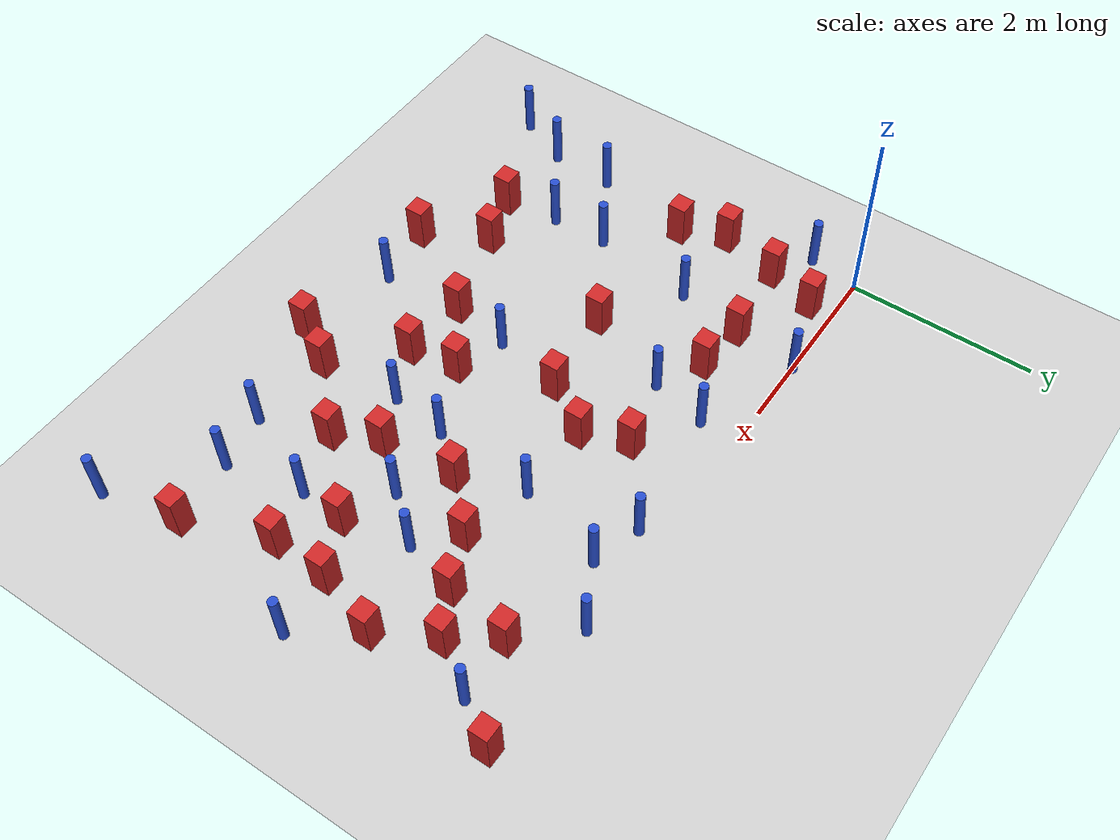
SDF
<sdf version="1.6">
 <world name="default">
  <model name="ground_plane">
   <static>1</static>
   <link name="link">
    <collision name="collision">
     <geometry><plane><normal>0 0 1</normal><size>100 100</size></plane></geometry>
     <surface><friction><ode><mu>100</mu><mu2>50</mu2></ode></friction></surface>
    </collision>
    <visual name="visual">
     <cast_shadows>0</cast_shadows>
     <geometry><plane><normal>0 0 1</normal><size>100 100</size></plane></geometry>
     <material>
      <ambient>1.0 1.0 1.0 1.0</ambient>
      <diffuse>0.8 0.8 0.8 1.0</diffuse>
      <specular>0.01 0.01 0.01 1.000000</specular>
     </material>
    </visual>
   </link>
  </model>
  <model name="NamedLocations">
   <static>true</static>
   <link name="DefaultStart"><pose>8.5 0 0 0 0 3.14</pose></link>
  </model>
  <model name="square_post_obstacle1">
   <static>true</static>
   <pose>3.32283525771 -3.27233390259 -4.36207812815e-07 3.75137919937e-06 9.77721102514e-07 2.47381364184e-05</pose>
   <link name="link">
    <pose>0 0 0.25 0 -0 0</pose>
    <inertial>
     <mass>100</mass>
     <inertia>
      <ixx>0.166667</ixx>
      <ixy>0</ixy>
      <ixz>0</ixz>
      <iyy>0.166667</iyy>
      <iyz>0</iyz>
      <izz>0.166667</izz>
     </inertia>
    </inertial>
    <collision name="collision"><geometry><box><size>.2 .2 .5</size></box></geometry></collision>
    <visual name="visual">
     <geometry><box><size>.2 .2 .5</size></box></geometry>
     <material>
      <script><name>Gazebo/Red</name><uri>file://media/materials/scripts/gazebo.material</uri></script>
     </material>
    </visual>
   </link>
  </model>
  <model name="pole_obstacle2">
   <static>true</static>
   <pose>-0.090030062196 -4.2540395773 -3.09024884793e-07 -7.19054271912e-07 -2.11315075133e-07 -1.93935509265e-07</pose>
   <link name="link">
    <pose>0 0 0.3 0 -0 0</pose>
    <inertial>
     <mass>1</mass>
     <inertia><ixx>0.145833</ixx><ixy>0</ixy><ixz>0</ixz><iyy>0.145833</iyy><iyz>0</iyz><izz>0.125</izz></inertia>
    </inertial>
    <collision name="collision">
     <geometry><cylinder><radius>0.05</radius><length>.6</length></cylinder></geometry>
    </collision>
    <visual name="visual">
     <geometry><cylinder><radius>0.05</radius><length>.6</length></cylinder></geometry>
     <material>
      <script><name>Gazebo/Blue</name><uri>file://media/materials/scripts/gazebo.material</uri></script>
     </material>
    </visual>
   </link>
  </model>
  <model name="pole_obstacle6">
   <static>true</static>
   <pose>4.31357146107 -0.379242574637 -3.09024884793e-07 -7.19054271912e-07 -2.11315075138e-07 -1.93935509266e-07</pose>
   <link name="link">
    <pose>0 0 0.3 0 -0 0</pose>
    <inertial>
     <mass>1</mass>
     <inertia><ixx>0.145833</ixx><ixy>0</ixy><ixz>0</ixz><iyy>0.145833</iyy><iyz>0</iyz><izz>0.125</izz></inertia>
    </inertial>
    <collision name="collision">
     <geometry><cylinder><radius>0.05</radius><length>.6</length></cylinder></geometry>
    </collision>
    <visual name="visual">
     <geometry><cylinder><radius>0.05</radius><length>.6</length></cylinder></geometry>
     <material>
      <script><name>Gazebo/Blue</name><uri>file://media/materials/scripts/gazebo.material</uri></script>
     </material>
    </visual>
   </link>
  </model>
  <model name="square_post_obstacle7">
   <static>true</static>
   <pose>3.95325379374 -3.89286199005 -4.36207812815e-07 3.75137919937e-06 9.77721102514e-07 2.47381364184e-05</pose>
   <link name="link">
    <pose>0 0 0.25 0 -0 0</pose>
    <inertial>
     <mass>100</mass>
     <inertia>
      <ixx>0.166667</ixx>
      <ixy>0</ixy>
      <ixz>0</ixz>
      <iyy>0.166667</iyy>
      <iyz>0</iyz>
      <izz>0.166667</izz>
     </inertia>
    </inertial>
    <collision name="collision"><geometry><box><size>.2 .2 .5</size></box></geometry></collision>
    <visual name="visual">
     <geometry><box><size>.2 .2 .5</size></box></geometry>
     <material>
      <script><name>Gazebo/Red</name><uri>file://media/materials/scripts/gazebo.material</uri></script>
     </material>
    </visual>
   </link>
  </model>
  <model name="pole_obstacle12">
   <static>true</static>
   <pose>3.95533532752 -2.41421232316 -3.09024884793e-07 -7.19054271912e-07 -2.11315075162e-07 -1.93935509281e-07</pose>
   <link name="link">
    <pose>0 0 0.3 0 -0 0</pose>
    <inertial>
     <mass>1</mass>
     <inertia><ixx>0.145833</ixx><ixy>0</ixy><ixz>0</ixz><iyy>0.145833</iyy><iyz>0</iyz><izz>0.125</izz></inertia>
    </inertial>
    <collision name="collision">
     <geometry><cylinder><radius>0.05</radius><length>.6</length></cylinder></geometry>
    </collision>
    <visual name="visual">
     <geometry><cylinder><radius>0.05</radius><length>.6</length></cylinder></geometry>
     <material>
      <script><name>Gazebo/Blue</name><uri>file://media/materials/scripts/gazebo.material</uri></script>
     </material>
    </visual>
   </link>
  </model>
  <model name="pole_obstacle15">
   <static>true</static>
   <pose>4.04022569842 -1.31853993154 -3.09024884848e-07 -7.19054271902e-07 -2.11315075195e-07 -1.93935509285e-07</pose>
   <link name="link">
    <pose>0 0 0.3 0 -0 0</pose>
    <inertial>
     <mass>1</mass>
     <inertia><ixx>0.145833</ixx><ixy>0</ixy><ixz>0</ixz><iyy>0.145833</iyy><iyz>0</iyz><izz>0.125</izz></inertia>
    </inertial>
    <collision name="collision">
     <geometry><cylinder><radius>0.05</radius><length>.6</length></cylinder></geometry>
    </collision>
    <visual name="visual">
     <geometry><cylinder><radius>0.05</radius><length>.6</length></cylinder></geometry>
     <material>
      <script><name>Gazebo/Blue</name><uri>file://media/materials/scripts/gazebo.material</uri></script>
     </material>
    </visual>
   </link>
  </model>
  <model name="square_post_obstacle15">
   <static>true</static>
   <pose>1.08311566166 -3.7098398395 -4.36207812815e-07 3.75137919937e-06 9.77721102514e-07 2.47381364184e-05</pose>
   <link name="link">
    <pose>0 0 0.25 0 -0 0</pose>
    <inertial>
     <mass>100</mass>
     <inertia>
      <ixx>0.166667</ixx>
      <ixy>0</ixy>
      <ixz>0</ixz>
      <iyy>0.166667</iyy>
      <iyz>0</iyz>
      <izz>0.166667</izz>
     </inertia>
    </inertial>
    <collision name="collision"><geometry><box><size>.2 .2 .5</size></box></geometry></collision>
    <visual name="visual">
     <geometry><box><size>.2 .2 .5</size></box></geometry>
     <material>
      <script><name>Gazebo/Red</name><uri>file://media/materials/scripts/gazebo.material</uri></script>
     </material>
    </visual>
   </link>
  </model>
  <model name="square_post_obstacle17">
   <static>true</static>
   <pose>4.58752522071 -3.25393874034 -4.36207812815e-07 3.75137919937e-06 9.77721102514e-07 2.47381364184e-05</pose>
   <link name="link">
    <pose>0 0 0.25 0 -0 0</pose>
    <inertial>
     <mass>100</mass>
     <inertia>
      <ixx>0.166667</ixx>
      <ixy>0</ixy>
      <ixz>0</ixz>
      <iyy>0.166667</iyy>
      <iyz>0</iyz>
      <izz>0.166667</izz>
     </inertia>
    </inertial>
    <collision name="collision"><geometry><box><size>.2 .2 .5</size></box></geometry></collision>
    <visual name="visual">
     <geometry><box><size>.2 .2 .5</size></box></geometry>
     <material>
      <script><name>Gazebo/Red</name><uri>file://media/materials/scripts/gazebo.material</uri></script>
     </material>
    </visual>
   </link>
  </model>
  <model name="pole_obstacle23">
   <static>true</static>
   <pose>2.4174713655 -0.40537235112 -3.09024884793e-07 -7.19054271912e-07 -2.1131507512e-07 -1.93935509259e-07</pose>
   <link name="link">
    <pose>0 0 0.3 0 -0 0</pose>
    <inertial>
     <mass>1</mass>
     <inertia><ixx>0.145833</ixx><ixy>0</ixy><ixz>0</ixz><iyy>0.145833</iyy><iyz>0</iyz><izz>0.125</izz></inertia>
    </inertial>
    <collision name="collision">
     <geometry><cylinder><radius>0.05</radius><length>.6</length></cylinder></geometry>
    </collision>
    <visual name="visual">
     <geometry><cylinder><radius>0.05</radius><length>.6</length></cylinder></geometry>
     <material>
      <script><name>Gazebo/Blue</name><uri>file://media/materials/scripts/gazebo.material</uri></script>
     </material>
    </visual>
   </link>
  </model>
  <model name="square_post_obstacle27">
   <static>true</static>
   <pose>5.29425867589 -1.25550853818 -4.36207812815e-07 3.75137919937e-06 9.77721102514e-07 2.47381364184e-05</pose>
   <link name="link">
    <pose>0 0 0.25 0 -0 0</pose>
    <inertial>
     <mass>100</mass>
     <inertia>
      <ixx>0.166667</ixx>
      <ixy>0</ixy>
      <ixz>0</ixz>
      <iyy>0.166667</iyy>
      <iyz>0</iyz>
      <izz>0.166667</izz>
     </inertia>
    </inertial>
    <collision name="collision"><geometry><box><size>.2 .2 .5</size></box></geometry></collision>
    <visual name="visual">
     <geometry><box><size>.2 .2 .5</size></box></geometry>
     <material>
      <script><name>Gazebo/Red</name><uri>file://media/materials/scripts/gazebo.material</uri></script>
     </material>
    </visual>
   </link>
  </model>
  <model name="square_post_obstacle28">
   <static>true</static>
   <pose>6.04809319809 -1.59033649194 -4.36207812815e-07 3.75137919937e-06 9.77721102514e-07 2.47381364184e-05</pose>
   <link name="link">
    <pose>0 0 0.25 0 -0 0</pose>
    <inertial>
     <mass>100</mass>
     <inertia>
      <ixx>0.166667</ixx>
      <ixy>0</ixy>
      <ixz>0</ixz>
      <iyy>0.166667</iyy>
      <iyz>0</iyz>
      <izz>0.166667</izz>
     </inertia>
    </inertial>
    <collision name="collision"><geometry><box><size>.2 .2 .5</size></box></geometry></collision>
    <visual name="visual">
     <geometry><box><size>.2 .2 .5</size></box></geometry>
     <material>
      <script><name>Gazebo/Red</name><uri>file://media/materials/scripts/gazebo.material</uri></script>
     </material>
    </visual>
   </link>
  </model>
  <model name="pole_obstacle33">
   <static>true</static>
   <pose>4.92546028938 -0.0373488993604 -3.09024884793e-07 -7.19054271912e-07 -2.11315075134e-07 -1.93935509267e-07</pose>
   <link name="link">
    <pose>0 0 0.3 0 -0 0</pose>
    <inertial>
     <mass>1</mass>
     <inertia><ixx>0.145833</ixx><ixy>0</ixy><ixz>0</ixz><iyy>0.145833</iyy><iyz>0</iyz><izz>0.125</izz></inertia>
    </inertial>
    <collision name="collision">
     <geometry><cylinder><radius>0.05</radius><length>.6</length></cylinder></geometry>
    </collision>
    <visual name="visual">
     <geometry><cylinder><radius>0.05</radius><length>.6</length></cylinder></geometry>
     <material>
      <script><name>Gazebo/Blue</name><uri>file://media/materials/scripts/gazebo.material</uri></script>
     </material>
    </visual>
   </link>
  </model>
  <model name="pole_obstacle41">
   <static>true</static>
   <pose>0.159189399075 -3.69354290294 -3.09024884848e-07 -7.19054271902e-07 -2.11315075201e-07 -1.93935509286e-07</pose>
   <link name="link">
    <pose>0 0 0.3 0 -0 0</pose>
    <inertial>
     <mass>1</mass>
     <inertia><ixx>0.145833</ixx><ixy>0</ixy><ixz>0</ixz><iyy>0.145833</iyy><iyz>0</iyz><izz>0.125</izz></inertia>
    </inertial>
    <collision name="collision">
     <geometry><cylinder><radius>0.05</radius><length>.6</length></cylinder></geometry>
    </collision>
    <visual name="visual">
     <geometry><cylinder><radius>0.05</radius><length>.6</length></cylinder></geometry>
     <material>
      <script><name>Gazebo/Blue</name><uri>file://media/materials/scripts/gazebo.material</uri></script>
     </material>
    </visual>
   </link>
  </model>
  <model name="square_post_obstacle36">
   <static>true</static>
   <pose>1.27302640206 -0.679181264691 -4.36207812815e-07 3.75137919937e-06 9.77721102514e-07 2.47381364184e-05</pose>
   <link name="link">
    <pose>0 0 0.25 0 -0 0</pose>
    <inertial>
     <mass>100</mass>
     <inertia>
      <ixx>0.166667</ixx>
      <ixy>0</ixy>
      <ixz>0</ixz>
      <iyy>0.166667</iyy>
      <iyz>0</iyz>
      <izz>0.166667</izz>
     </inertia>
    </inertial>
    <collision name="collision"><geometry><box><size>.2 .2 .5</size></box></geometry></collision>
    <visual name="visual">
     <geometry><box><size>.2 .2 .5</size></box></geometry>
     <material>
      <script><name>Gazebo/Red</name><uri>file://media/materials/scripts/gazebo.material</uri></script>
     </material>
    </visual>
   </link>
  </model>
  <model name="square_post_obstacle38">
   <static>true</static>
   <pose>0.394411259641 -1.92140299886 -4.36207812815e-07 3.75137919937e-06 9.77721102514e-07 2.47381364184e-05</pose>
   <link name="link">
    <pose>0 0 0.25 0 -0 0</pose>
    <inertial>
     <mass>100</mass>
     <inertia>
      <ixx>0.166667</ixx>
      <ixy>0</ixy>
      <ixz>0</ixz>
      <iyy>0.166667</iyy>
      <iyz>0</iyz>
      <izz>0.166667</izz>
     </inertia>
    </inertial>
    <collision name="collision"><geometry><box><size>.2 .2 .5</size></box></geometry></collision>
    <visual name="visual">
     <geometry><box><size>.2 .2 .5</size></box></geometry>
     <material>
      <script><name>Gazebo/Red</name><uri>file://media/materials/scripts/gazebo.material</uri></script>
     </material>
    </visual>
   </link>
  </model>
  <model name="pole_obstacle51">
   <static>true</static>
   <pose>3.86514839999 -3.03517323641 -3.09024884793e-07 -7.19054271912e-07 -2.11315075144e-07 -1.93935509271e-07</pose>
   <link name="link">
    <pose>0 0 0.3 0 -0 0</pose>
    <inertial>
     <mass>1</mass>
     <inertia><ixx>0.145833</ixx><ixy>0</ixy><ixz>0</ixz><iyy>0.145833</iyy><iyz>0</iyz><izz>0.125</izz></inertia>
    </inertial>
    <collision name="collision">
     <geometry><cylinder><radius>0.05</radius><length>.6</length></cylinder></geometry>
    </collision>
    <visual name="visual">
     <geometry><cylinder><radius>0.05</radius><length>.6</length></cylinder></geometry>
     <material>
      <script><name>Gazebo/Blue</name><uri>file://media/materials/scripts/gazebo.material</uri></script>
     </material>
    </visual>
   </link>
  </model>
  <model name="pole_obstacle53">
   <static>true</static>
   <pose>2.65571239554 -4.11644397076 -3.09024884793e-07 -7.19054271912e-07 -2.11315075134e-07 -1.93935509266e-07</pose>
   <link name="link">
    <pose>0 0 0.3 0 -0 0</pose>
    <inertial>
     <mass>1</mass>
     <inertia><ixx>0.145833</ixx><ixy>0</ixy><ixz>0</ixz><iyy>0.145833</iyy><iyz>0</iyz><izz>0.125</izz></inertia>
    </inertial>
    <collision name="collision">
     <geometry><cylinder><radius>0.05</radius><length>.6</length></cylinder></geometry>
    </collision>
    <visual name="visual">
     <geometry><cylinder><radius>0.05</radius><length>.6</length></cylinder></geometry>
     <material>
      <script><name>Gazebo/Blue</name><uri>file://media/materials/scripts/gazebo.material</uri></script>
     </material>
    </visual>
   </link>
  </model>
  <model name="square_post_obstacle40">
   <static>true</static>
   <pose>4.76847628048 -1.4942307079 -4.36207812815e-07 3.75137919937e-06 9.77721102514e-07 2.47381364184e-05</pose>
   <link name="link">
    <pose>0 0 0.25 0 -0 0</pose>
    <inertial>
     <mass>100</mass>
     <inertia>
      <ixx>0.166667</ixx>
      <ixy>0</ixy>
      <ixz>0</ixz>
      <iyy>0.166667</iyy>
      <iyz>0</iyz>
      <izz>0.166667</izz>
     </inertia>
    </inertial>
    <collision name="collision"><geometry><box><size>.2 .2 .5</size></box></geometry></collision>
    <visual name="visual">
     <geometry><box><size>.2 .2 .5</size></box></geometry>
     <material>
      <script><name>Gazebo/Red</name><uri>file://media/materials/scripts/gazebo.material</uri></script>
     </material>
    </visual>
   </link>
  </model>
  <model name="square_post_obstacle42">
   <static>true</static>
   <pose>1.64637830347 -3.52185712327 -4.36207812815e-07 3.75137919937e-06 9.77721102514e-07 2.47381364184e-05</pose>
   <link name="link">
    <pose>0 0 0.25 0 -0 0</pose>
    <inertial>
     <mass>100</mass>
     <inertia>
      <ixx>0.166667</ixx>
      <ixy>0</ixy>
      <ixz>0</ixz>
      <iyy>0.166667</iyy>
      <iyz>0</iyz>
      <izz>0.166667</izz>
     </inertia>
    </inertial>
    <collision name="collision"><geometry><box><size>.2 .2 .5</size></box></geometry></collision>
    <visual name="visual">
     <geometry><box><size>.2 .2 .5</size></box></geometry>
     <material>
      <script><name>Gazebo/Red</name><uri>file://media/materials/scripts/gazebo.material</uri></script>
     </material>
    </visual>
   </link>
  </model>
  <model name="pole_obstacle57">
   <static>true</static>
   <pose>0.958607570691 -2.53665374595 -3.09024884793e-07 -7.19054271912e-07 -2.11315075133e-07 -1.93935509265e-07</pose>
   <link name="link">
    <pose>0 0 0.3 0 -0 0</pose>
    <inertial>
     <mass>1</mass>
     <inertia><ixx>0.145833</ixx><ixy>0</ixy><ixz>0</ixz><iyy>0.145833</iyy><iyz>0</iyz><izz>0.125</izz></inertia>
    </inertial>
    <collision name="collision">
     <geometry><cylinder><radius>0.05</radius><length>.6</length></cylinder></geometry>
    </collision>
    <visual name="visual">
     <geometry><cylinder><radius>0.05</radius><length>.6</length></cylinder></geometry>
     <material>
      <script><name>Gazebo/Blue</name><uri>file://media/materials/scripts/gazebo.material</uri></script>
     </material>
    </visual>
   </link>
  </model>
  <model name="square_post_obstacle50">
   <static>true</static>
   <pose>1.82663103435 -0.73464391659 -4.36207812815e-07 3.75137919937e-06 9.77721102514e-07 2.47381364184e-05</pose>
   <link name="link">
    <pose>0 0 0.25 0 -0 0</pose>
    <inertial>
     <mass>100</mass>
     <inertia>
      <ixx>0.166667</ixx>
      <ixy>0</ixy>
      <ixz>0</ixz>
      <iyy>0.166667</iyy>
      <iyz>0</iyz>
      <izz>0.166667</izz>
     </inertia>
    </inertial>
    <collision name="collision"><geometry><box><size>.2 .2 .5</size></box></geometry></collision>
    <visual name="visual">
     <geometry><box><size>.2 .2 .5</size></box></geometry>
     <material>
      <script><name>Gazebo/Red</name><uri>file://media/materials/scripts/gazebo.material</uri></script>
     </material>
    </visual>
   </link>
  </model>
  <model name="square_post_obstacle61">
   <static>true</static>
   <pose>2.61724315105 -3.21177866637 -4.36207812815e-07 3.75137919937e-06 9.77721102514e-07 2.47381364184e-05</pose>
   <link name="link">
    <pose>0 0 0.25 0 -0 0</pose>
    <inertial>
     <mass>100</mass>
     <inertia>
      <ixx>0.166667</ixx>
      <ixy>0</ixy>
      <ixz>0</ixz>
      <iyy>0.166667</iyy>
      <iyz>0</iyz>
      <izz>0.166667</izz>
     </inertia>
    </inertial>
    <collision name="collision"><geometry><box><size>.2 .2 .5</size></box></geometry></collision>
    <visual name="visual">
     <geometry><box><size>.2 .2 .5</size></box></geometry>
     <material>
      <script><name>Gazebo/Red</name><uri>file://media/materials/scripts/gazebo.material</uri></script>
     </material>
    </visual>
   </link>
  </model>
  <model name="pole_obstacle76">
   <static>true</static>
   <pose>2.27553708797 -1.00912454596 -3.09024884793e-07 -7.19054271912e-07 -2.11315075125e-07 -1.93935509262e-07</pose>
   <link name="link">
    <pose>0 0 0.3 0 -0 0</pose>
    <inertial>
     <mass>1</mass>
     <inertia><ixx>0.145833</ixx><ixy>0</ixy><ixz>0</ixz><iyy>0.145833</iyy><iyz>0</iyz><izz>0.125</izz></inertia>
    </inertial>
    <collision name="collision">
     <geometry><cylinder><radius>0.05</radius><length>.6</length></cylinder></geometry>
    </collision>
    <visual name="visual">
     <geometry><cylinder><radius>0.05</radius><length>.6</length></cylinder></geometry>
     <material>
      <script><name>Gazebo/Blue</name><uri>file://media/materials/scripts/gazebo.material</uri></script>
     </material>
    </visual>
   </link>
  </model>
  <model name="square_post_obstacle65">
   <static>true</static>
   <pose>5.43057047458 -0.554225199465 -4.36207812815e-07 3.75137919937e-06 9.77721102514e-07 2.47381364184e-05</pose>
   <link name="link">
    <pose>0 0 0.25 0 -0 0</pose>
    <inertial>
     <mass>100</mass>
     <inertia>
      <ixx>0.166667</ixx>
      <ixy>0</ixy>
      <ixz>0</ixz>
      <iyy>0.166667</iyy>
      <iyz>0</iyz>
      <izz>0.166667</izz>
     </inertia>
    </inertial>
    <collision name="collision"><geometry><box><size>.2 .2 .5</size></box></geometry></collision>
    <visual name="visual">
     <geometry><box><size>.2 .2 .5</size></box></geometry>
     <material>
      <script><name>Gazebo/Red</name><uri>file://media/materials/scripts/gazebo.material</uri></script>
     </material>
    </visual>
   </link>
  </model>
  <model name="pole_obstacle78">
   <static>true</static>
   <pose>0.974490368155 -3.14868619021 -3.09024884793e-07 -7.19054271912e-07 -2.11315075133e-07 -1.93935509265e-07</pose>
   <link name="link">
    <pose>0 0 0.3 0 -0 0</pose>
    <inertial>
     <mass>1</mass>
     <inertia><ixx>0.145833</ixx><ixy>0</ixy><ixz>0</ixz><iyy>0.145833</iyy><iyz>0</iyz><izz>0.125</izz></inertia>
    </inertial>
    <collision name="collision">
     <geometry><cylinder><radius>0.05</radius><length>.6</length></cylinder></geometry>
    </collision>
    <visual name="visual">
     <geometry><cylinder><radius>0.05</radius><length>.6</length></cylinder></geometry>
     <material>
      <script><name>Gazebo/Blue</name><uri>file://media/materials/scripts/gazebo.material</uri></script>
     </material>
    </visual>
   </link>
  </model>
  <model name="square_post_obstacle76">
   <static>true</static>
   <pose>6.12492941724 -3.78424008547 -4.36207812815e-07 3.75137919937e-06 9.77721102514e-07 2.47381364184e-05</pose>
   <link name="link">
    <pose>0 0 0.25 0 -0 0</pose>
    <inertial>
     <mass>100</mass>
     <inertia>
      <ixx>0.166667</ixx>
      <ixy>0</ixy>
      <ixz>0</ixz>
      <iyy>0.166667</iyy>
      <iyz>0</iyz>
      <izz>0.166667</izz>
     </inertia>
    </inertial>
    <collision name="collision"><geometry><box><size>.2 .2 .5</size></box></geometry></collision>
    <visual name="visual">
     <geometry><box><size>.2 .2 .5</size></box></geometry>
     <material>
      <script><name>Gazebo/Red</name><uri>file://media/materials/scripts/gazebo.material</uri></script>
     </material>
    </visual>
   </link>
  </model>
  <model name="square_post_obstacle96">
   <static>true</static>
   <pose>3.23303195512 -1.29019972209 -4.36207812815e-07 3.75137919937e-06 9.77721102514e-07 2.47381364184e-05</pose>
   <link name="link">
    <pose>0 0 0.25 0 -0 0</pose>
    <inertial>
     <mass>100</mass>
     <inertia>
      <ixx>0.166667</ixx>
      <ixy>0</ixy>
      <ixz>0</ixz>
      <iyy>0.166667</iyy>
      <iyz>0</iyz>
      <izz>0.166667</izz>
     </inertia>
    </inertial>
    <collision name="collision"><geometry><box><size>.2 .2 .5</size></box></geometry></collision>
    <visual name="visual">
     <geometry><box><size>.2 .2 .5</size></box></geometry>
     <material>
      <script><name>Gazebo/Red</name><uri>file://media/materials/scripts/gazebo.material</uri></script>
     </material>
    </visual>
   </link>
  </model>
  <model name="square_post_obstacle111">
   <static>true</static>
   <pose>5.83171530563 -2.25911229447 -4.36207812815e-07 3.75137919937e-06 9.77721102514e-07 2.47381364184e-05</pose>
   <link name="link">
    <pose>0 0 0.25 0 -0 0</pose>
    <inertial>
     <mass>100</mass>
     <inertia>
      <ixx>0.166667</ixx>
      <ixy>0</ixy>
      <ixz>0</ixz>
      <iyy>0.166667</iyy>
      <iyz>0</iyz>
      <izz>0.166667</izz>
     </inertia>
    </inertial>
    <collision name="collision"><geometry><box><size>.2 .2 .5</size></box></geometry></collision>
    <visual name="visual">
     <geometry><box><size>.2 .2 .5</size></box></geometry>
     <material>
      <script><name>Gazebo/Red</name><uri>file://media/materials/scripts/gazebo.material</uri></script>
     </material>
    </visual>
   </link>
  </model>
  <model name="square_post_obstacle121">
   <static>true</static>
   <pose>3.67664521151 -4.34194914626 -4.36207812815e-07 3.75137919937e-06 9.77721102514e-07 2.47381364184e-05</pose>
   <link name="link">
    <pose>0 0 0.25 0 -0 0</pose>
    <inertial>
     <mass>100</mass>
     <inertia>
      <ixx>0.166667</ixx>
      <ixy>0</ixy>
      <ixz>0</ixz>
      <iyy>0.166667</iyy>
      <iyz>0</iyz>
      <izz>0.166667</izz>
     </inertia>
    </inertial>
    <collision name="collision"><geometry><box><size>.2 .2 .5</size></box></geometry></collision>
    <visual name="visual">
     <geometry><box><size>.2 .2 .5</size></box></geometry>
     <material>
      <script><name>Gazebo/Red</name><uri>file://media/materials/scripts/gazebo.material</uri></script>
     </material>
    </visual>
   </link>
  </model>
  <model name="square_post_obstacle123">
   <static>true</static>
   <pose>1.93709421673 -1.92891895501 -4.36207812815e-07 3.75137919937e-06 9.77721102514e-07 2.47381364184e-05</pose>
   <link name="link">
    <pose>0 0 0.25 0 -0 0</pose>
    <inertial>
     <mass>100</mass>
     <inertia>
      <ixx>0.166667</ixx>
      <ixy>0</ixy>
      <ixz>0</ixz>
      <iyy>0.166667</iyy>
      <iyz>0</iyz>
      <izz>0.166667</izz>
     </inertia>
    </inertial>
    <collision name="collision"><geometry><box><size>.2 .2 .5</size></box></geometry></collision>
    <visual name="visual">
     <geometry><box><size>.2 .2 .5</size></box></geometry>
     <material>
      <script><name>Gazebo/Red</name><uri>file://media/materials/scripts/gazebo.material</uri></script>
     </material>
    </visual>
   </link>
  </model>
  <model name="square_post_obstacle125">
   <static>true</static>
   <pose>3.05250829288 -0.802960864748 -4.36207812815e-07 3.75137919937e-06 9.77721102514e-07 2.47381364184e-05</pose>
   <link name="link">
    <pose>0 0 0.25 0 -0 0</pose>
    <inertial>
     <mass>100</mass>
     <inertia>
      <ixx>0.166667</ixx>
      <ixy>0</ixy>
      <ixz>0</ixz>
      <iyy>0.166667</iyy>
      <iyz>0</iyz>
      <izz>0.166667</izz>
     </inertia>
    </inertial>
    <collision name="collision"><geometry><box><size>.2 .2 .5</size></box></geometry></collision>
    <visual name="visual">
     <geometry><box><size>.2 .2 .5</size></box></geometry>
     <material>
      <script><name>Gazebo/Red</name><uri>file://media/materials/scripts/gazebo.material</uri></script>
     </material>
    </visual>
   </link>
  </model>
  <model name="square_post_obstacle132">
   <static>true</static>
   <pose>4.30776705622 -1.97303838122 -4.36207812815e-07 3.75137919937e-06 9.77721102514e-07 2.47381364184e-05</pose>
   <link name="link">
    <pose>0 0 0.25 0 -0 0</pose>
    <inertial>
     <mass>100</mass>
     <inertia>
      <ixx>0.166667</ixx>
      <ixy>0</ixy>
      <ixz>0</ixz>
      <iyy>0.166667</iyy>
      <iyz>0</iyz>
      <izz>0.166667</izz>
     </inertia>
    </inertial>
    <collision name="collision"><geometry><box><size>.2 .2 .5</size></box></geometry></collision>
    <visual name="visual">
     <geometry><box><size>.2 .2 .5</size></box></geometry>
     <material>
      <script><name>Gazebo/Red</name><uri>file://media/materials/scripts/gazebo.material</uri></script>
     </material>
    </visual>
   </link>
  </model>
  <model name="pole_obstacle133">
   <static>true</static>
   <pose>5.22800465277 -3.06257531897 -3.09024884793e-07 -7.19054271912e-07 -2.11315075144e-07 -1.93935509269e-07</pose>
   <link name="link">
    <pose>0 0 0.3 0 -0 0</pose>
    <inertial>
     <mass>1</mass>
     <inertia><ixx>0.145833</ixx><ixy>0</ixy><ixz>0</ixz><iyy>0.145833</iyy><iyz>0</iyz><izz>0.125</izz></inertia>
    </inertial>
    <collision name="collision">
     <geometry><cylinder><radius>0.05</radius><length>.6</length></cylinder></geometry>
    </collision>
    <visual name="visual">
     <geometry><cylinder><radius>0.05</radius><length>.6</length></cylinder></geometry>
     <material>
      <script><name>Gazebo/Blue</name><uri>file://media/materials/scripts/gazebo.material</uri></script>
     </material>
    </visual>
   </link>
  </model>
  <model name="pole_obstacle140">
   <static>true</static>
   <pose>4.81476506909 -3.9972521133 -3.09024884793e-07 -7.19054271912e-07 -2.11315075139e-07 -1.93935509266e-07</pose>
   <link name="link">
    <pose>0 0 0.3 0 -0 0</pose>
    <inertial>
     <mass>1</mass>
     <inertia><ixx>0.145833</ixx><ixy>0</ixy><ixz>0</ixz><iyy>0.145833</iyy><iyz>0</iyz><izz>0.125</izz></inertia>
    </inertial>
    <collision name="collision">
     <geometry><cylinder><radius>0.05</radius><length>.6</length></cylinder></geometry>
    </collision>
    <visual name="visual">
     <geometry><cylinder><radius>0.05</radius><length>.6</length></cylinder></geometry>
     <material>
      <script><name>Gazebo/Blue</name><uri>file://media/materials/scripts/gazebo.material</uri></script>
     </material>
    </visual>
   </link>
  </model>
  <model name="square_post_obstacle136">
   <static>true</static>
   <pose>0.539886403425 -0.250506031495 -4.36207812815e-07 3.75137919937e-06 9.77721102514e-07 2.47381364184e-05</pose>
   <link name="link">
    <pose>0 0 0.25 0 -0 0</pose>
    <inertial>
     <mass>100</mass>
     <inertia>
      <ixx>0.166667</ixx>
      <ixy>0</ixy>
      <ixz>0</ixz>
      <iyy>0.166667</iyy>
      <iyz>0</iyz>
      <izz>0.166667</izz>
     </inertia>
    </inertial>
    <collision name="collision"><geometry><box><size>.2 .2 .5</size></box></geometry></collision>
    <visual name="visual">
     <geometry><box><size>.2 .2 .5</size></box></geometry>
     <material>
      <script><name>Gazebo/Red</name><uri>file://media/materials/scripts/gazebo.material</uri></script>
     </material>
    </visual>
   </link>
  </model>
  <model name="pole_obstacle143">
   <static>true</static>
   <pose>1.12282845016 -1.41616495041 -3.09024884793e-07 -7.19054271912e-07 -2.1131507513e-07 -1.93935509263e-07</pose>
   <link name="link">
    <pose>0 0 0.3 0 -0 0</pose>
    <inertial>
     <mass>1</mass>
     <inertia><ixx>0.145833</ixx><ixy>0</ixy><ixz>0</ixz><iyy>0.145833</iyy><iyz>0</iyz><izz>0.125</izz></inertia>
    </inertial>
    <collision name="collision">
     <geometry><cylinder><radius>0.05</radius><length>.6</length></cylinder></geometry>
    </collision>
    <visual name="visual">
     <geometry><cylinder><radius>0.05</radius><length>.6</length></cylinder></geometry>
     <material>
      <script><name>Gazebo/Blue</name><uri>file://media/materials/scripts/gazebo.material</uri></script>
     </material>
    </visual>
   </link>
  </model>
  <model name="pole_obstacle150">
   <static>true</static>
   <pose>5.12417014059 -1.86456668137 -3.09024884793e-07 -7.19054271912e-07 -2.11315075124e-07 -1.93935509261e-07</pose>
   <link name="link">
    <pose>0 0 0.3 0 -0 0</pose>
    <inertial>
     <mass>1</mass>
     <inertia><ixx>0.145833</ixx><ixy>0</ixy><ixz>0</ixz><iyy>0.145833</iyy><iyz>0</iyz><izz>0.125</izz></inertia>
    </inertial>
    <collision name="collision">
     <geometry><cylinder><radius>0.05</radius><length>.6</length></cylinder></geometry>
    </collision>
    <visual name="visual">
     <geometry><cylinder><radius>0.05</radius><length>.6</length></cylinder></geometry>
     <material>
      <script><name>Gazebo/Blue</name><uri>file://media/materials/scripts/gazebo.material</uri></script>
     </material>
    </visual>
   </link>
  </model>
  <model name="square_post_obstacle146">
   <static>true</static>
   <pose>4.37323387232 -2.78024457127 -4.36207812815e-07 3.75137919937e-06 9.77721102514e-07 2.47381364184e-05</pose>
   <link name="link">
    <pose>0 0 0.25 0 -0 0</pose>
    <inertial>
     <mass>100</mass>
     <inertia>
      <ixx>0.166667</ixx>
      <ixy>0</ixy>
      <ixz>0</ixz>
      <iyy>0.166667</iyy>
      <iyz>0</iyz>
      <izz>0.166667</izz>
     </inertia>
    </inertial>
    <collision name="collision"><geometry><box><size>.2 .2 .5</size></box></geometry></collision>
    <visual name="visual">
     <geometry><box><size>.2 .2 .5</size></box></geometry>
     <material>
      <script><name>Gazebo/Red</name><uri>file://media/materials/scripts/gazebo.material</uri></script>
     </material>
    </visual>
   </link>
  </model>
  <model name="square_post_obstacle150">
   <static>true</static>
   <pose>5.79893883262 -2.88080021218 -4.36207812815e-07 3.75137919937e-06 9.77721102514e-07 2.47381364184e-05</pose>
   <link name="link">
    <pose>0 0 0.25 0 -0 0</pose>
    <inertial>
     <mass>100</mass>
     <inertia>
      <ixx>0.166667</ixx>
      <ixy>0</ixy>
      <ixz>0</ixz>
      <iyy>0.166667</iyy>
      <iyz>0</iyz>
      <izz>0.166667</izz>
     </inertia>
    </inertial>
    <collision name="collision"><geometry><box><size>.2 .2 .5</size></box></geometry></collision>
    <visual name="visual">
     <geometry><box><size>.2 .2 .5</size></box></geometry>
     <material>
      <script><name>Gazebo/Red</name><uri>file://media/materials/scripts/gazebo.material</uri></script>
     </material>
    </visual>
   </link>
  </model>
  <model name="square_post_obstacle152">
   <static>true</static>
   <pose>5.73869508783 -0.996038556362 -4.36207812815e-07 3.75137919937e-06 9.77721102514e-07 2.47381364184e-05</pose>
   <link name="link">
    <pose>0 0 0.25 0 -0 0</pose>
    <inertial>
     <mass>100</mass>
     <inertia>
      <ixx>0.166667</ixx>
      <ixy>0</ixy>
      <ixz>0</ixz>
      <iyy>0.166667</iyy>
      <iyz>0</iyz>
      <izz>0.166667</izz>
     </inertia>
    </inertial>
    <collision name="collision"><geometry><box><size>.2 .2 .5</size></box></geometry></collision>
    <visual name="visual">
     <geometry><box><size>.2 .2 .5</size></box></geometry>
     <material>
      <script><name>Gazebo/Red</name><uri>file://media/materials/scripts/gazebo.material</uri></script>
     </material>
    </visual>
   </link>
  </model>
  <model name="pole_obstacle165">
   <static>true</static>
   <pose>6.0582620305 -0.527635824463 -3.09024884793e-07 -7.19054271912e-07 -2.11315075137e-07 -1.93935509267e-07</pose>
   <link name="link">
    <pose>0 0 0.3 0 -0 0</pose>
    <inertial>
     <mass>1</mass>
     <inertia><ixx>0.145833</ixx><ixy>0</ixy><ixz>0</ixz><iyy>0.145833</iyy><iyz>0</iyz><izz>0.125</izz></inertia>
    </inertial>
    <collision name="collision">
     <geometry><cylinder><radius>0.05</radius><length>.6</length></cylinder></geometry>
    </collision>
    <visual name="visual">
     <geometry><cylinder><radius>0.05</radius><length>.6</length></cylinder></geometry>
     <material>
      <script><name>Gazebo/Blue</name><uri>file://media/materials/scripts/gazebo.material</uri></script>
     </material>
    </visual>
   </link>
  </model>
  <model name="square_post_obstacle163">
   <static>true</static>
   <pose>0.211110752942 -1.43130818301 -4.36207812815e-07 3.75137919937e-06 9.77721102514e-07 2.47381364184e-05</pose>
   <link name="link">
    <pose>0 0 0.25 0 -0 0</pose>
    <inertial>
     <mass>100</mass>
     <inertia>
      <ixx>0.166667</ixx>
      <ixy>0</ixy>
      <ixz>0</ixz>
      <iyy>0.166667</iyy>
      <iyz>0</iyz>
      <izz>0.166667</izz>
     </inertia>
    </inertial>
    <collision name="collision"><geometry><box><size>.2 .2 .5</size></box></geometry></collision>
    <visual name="visual">
     <geometry><box><size>.2 .2 .5</size></box></geometry>
     <material>
      <script><name>Gazebo/Red</name><uri>file://media/materials/scripts/gazebo.material</uri></script>
     </material>
    </visual>
   </link>
  </model>
  <model name="square_post_obstacle165">
   <static>true</static>
   <pose>1.99328530968 -4.19007012378 -4.36207812815e-07 3.75137919937e-06 9.77721102514e-07 2.47381364184e-05</pose>
   <link name="link">
    <pose>0 0 0.25 0 -0 0</pose>
    <inertial>
     <mass>100</mass>
     <inertia>
      <ixx>0.166667</ixx>
      <ixy>0</ixy>
      <ixz>0</ixz>
      <iyy>0.166667</iyy>
      <iyz>0</iyz>
      <izz>0.166667</izz>
     </inertia>
    </inertial>
    <collision name="collision"><geometry><box><size>.2 .2 .5</size></box></geometry></collision>
    <visual name="visual">
     <geometry><box><size>.2 .2 .5</size></box></geometry>
     <material>
      <script><name>Gazebo/Red</name><uri>file://media/materials/scripts/gazebo.material</uri></script>
     </material>
    </visual>
   </link>
  </model>
  <model name="square_post_obstacle166">
   <static>true</static>
   <pose>2.88526427425 -1.81429474862 -4.36207812815e-07 3.75137919937e-06 9.77721102514e-07 2.47381364184e-05</pose>
   <link name="link">
    <pose>0 0 0.25 0 -0 0</pose>
    <inertial>
     <mass>100</mass>
     <inertia>
      <ixx>0.166667</ixx>
      <ixy>0</ixy>
      <ixz>0</ixz>
      <iyy>0.166667</iyy>
      <iyz>0</iyz>
      <izz>0.166667</izz>
     </inertia>
    </inertial>
    <collision name="collision"><geometry><box><size>.2 .2 .5</size></box></geometry></collision>
    <visual name="visual">
     <geometry><box><size>.2 .2 .5</size></box></geometry>
     <material>
      <script><name>Gazebo/Red</name><uri>file://media/materials/scripts/gazebo.material</uri></script>
     </material>
    </visual>
   </link>
  </model>
  <model name="pole_obstacle169">
   <static>true</static>
   <pose>4.74107883556 -2.3349607389 -3.09024884793e-07 -7.19054271912e-07 -2.11315075144e-07 -1.93935509269e-07</pose>
   <link name="link">
    <pose>0 0 0.3 0 -0 0</pose>
    <inertial>
     <mass>1</mass>
     <inertia><ixx>0.145833</ixx><ixy>0</ixy><ixz>0</ixz><iyy>0.145833</iyy><iyz>0</iyz><izz>0.125</izz></inertia>
    </inertial>
    <collision name="collision">
     <geometry><cylinder><radius>0.05</radius><length>.6</length></cylinder></geometry>
    </collision>
    <visual name="visual">
     <geometry><cylinder><radius>0.05</radius><length>.6</length></cylinder></geometry>
     <material>
      <script><name>Gazebo/Blue</name><uri>file://media/materials/scripts/gazebo.material</uri></script>
     </material>
    </visual>
   </link>
  </model>
  <model name="square_post_obstacle178">
   <static>true</static>
   <pose>6.32492019444 -0.0845939479066 -4.36207812815e-07 3.75137919937e-06 9.77721102514e-07 2.47381364184e-05</pose>
   <link name="link">
    <pose>0 0 0.25 0 -0 0</pose>
    <inertial>
     <mass>100</mass>
     <inertia>
      <ixx>0.166667</ixx>
      <ixy>0</ixy>
      <ixz>0</ixz>
      <iyy>0.166667</iyy>
      <iyz>0</iyz>
      <izz>0.166667</izz>
     </inertia>
    </inertial>
    <collision name="collision"><geometry><box><size>.2 .2 .5</size></box></geometry></collision>
    <visual name="visual">
     <geometry><box><size>.2 .2 .5</size></box></geometry>
     <material>
      <script><name>Gazebo/Red</name><uri>file://media/materials/scripts/gazebo.material</uri></script>
     </material>
    </visual>
   </link>
  </model>
  <model name="pole_obstacle182">
   <static>true</static>
   <pose>-0.070607465535 -0.539835881829 -3.09024884793e-07 -7.19054271912e-07 -2.11315075131e-07 -1.93935509264e-07</pose>
   <link name="link">
    <pose>0 0 0.3 0 -0 0</pose>
    <inertial>
     <mass>1</mass>
     <inertia><ixx>0.145833</ixx><ixy>0</ixy><ixz>0</ixz><iyy>0.145833</iyy><iyz>0</iyz><izz>0.125</izz></inertia>
    </inertial>
    <collision name="collision">
     <geometry><cylinder><radius>0.05</radius><length>.6</length></cylinder></geometry>
    </collision>
    <visual name="visual">
     <geometry><cylinder><radius>0.05</radius><length>.6</length></cylinder></geometry>
     <material>
      <script><name>Gazebo/Blue</name><uri>file://media/materials/scripts/gazebo.material</uri></script>
     </material>
    </visual>
   </link>
  </model>
  <model name="square_post_obstacle183">
   <static>true</static>
   <pose>5.27632265578 -2.54101221713 -4.36207812815e-07 3.75137919937e-06 9.77721102514e-07 2.47381364184e-05</pose>
   <link name="link">
    <pose>0 0 0.25 0 -0 0</pose>
    <inertial>
     <mass>100</mass>
     <inertia>
      <ixx>0.166667</ixx>
      <ixy>0</ixy>
      <ixz>0</ixz>
      <iyy>0.166667</iyy>
      <iyz>0</iyz>
      <izz>0.166667</izz>
     </inertia>
    </inertial>
    <collision name="collision"><geometry><box><size>.2 .2 .5</size></box></geometry></collision>
    <visual name="visual">
     <geometry><box><size>.2 .2 .5</size></box></geometry>
     <material>
      <script><name>Gazebo/Red</name><uri>file://media/materials/scripts/gazebo.material</uri></script>
     </material>
    </visual>
   </link>
  </model>
  <model name="pole_obstacle185">
   <static>true</static>
   <pose>3.79849189872 -0.223082089836 -3.09024884848e-07 -7.19054271902e-07 -2.11315075197e-07 -1.93935509286e-07</pose>
   <link name="link">
    <pose>0 0 0.3 0 -0 0</pose>
    <inertial>
     <mass>1</mass>
     <inertia><ixx>0.145833</ixx><ixy>0</ixy><ixz>0</ixz><iyy>0.145833</iyy><iyz>0</iyz><izz>0.125</izz></inertia>
    </inertial>
    <collision name="collision">
     <geometry><cylinder><radius>0.05</radius><length>.6</length></cylinder></geometry>
    </collision>
    <visual name="visual">
     <geometry><cylinder><radius>0.05</radius><length>.6</length></cylinder></geometry>
     <material>
      <script><name>Gazebo/Blue</name><uri>file://media/materials/scripts/gazebo.material</uri></script>
     </material>
    </visual>
   </link>
  </model>
  <model name="square_post_obstacle194">
   <static>true</static>
   <pose>0.385297542083 -0.783502034262 -4.36207812815e-07 3.75137919937e-06 9.77721102514e-07 2.47381364184e-05</pose>
   <link name="link">
    <pose>0 0 0.25 0 -0 0</pose>
    <inertial>
     <mass>100</mass>
     <inertia>
      <ixx>0.166667</ixx>
      <ixy>0</ixy>
      <ixz>0</ixz>
      <iyy>0.166667</iyy>
      <iyz>0</iyz>
      <izz>0.166667</izz>
     </inertia>
    </inertial>
    <collision name="collision"><geometry><box><size>.2 .2 .5</size></box></geometry></collision>
    <visual name="visual">
     <geometry><box><size>.2 .2 .5</size></box></geometry>
     <material>
      <script><name>Gazebo/Red</name><uri>file://media/materials/scripts/gazebo.material</uri></script>
     </material>
    </visual>
   </link>
  </model>
  <model name="pole_obstacle190">
   <static>true</static>
   <pose>0.19162719018 -3.00360922229 -3.09024884793e-07 -7.19054271912e-07 -2.11315075126e-07 -1.9393550926e-07</pose>
   <link name="link">
    <pose>0 0 0.3 0 -0 0</pose>
    <inertial>
     <mass>1</mass>
     <inertia><ixx>0.145833</ixx><ixy>0</ixy><ixz>0</ixz><iyy>0.145833</iyy><iyz>0</iyz><izz>0.125</izz></inertia>
    </inertial>
    <collision name="collision">
     <geometry><cylinder><radius>0.05</radius><length>.6</length></cylinder></geometry>
    </collision>
    <visual name="visual">
     <geometry><cylinder><radius>0.05</radius><length>.6</length></cylinder></geometry>
     <material>
      <script><name>Gazebo/Blue</name><uri>file://media/materials/scripts/gazebo.material</uri></script>
     </material>
    </visual>
   </link>
  </model>
  <model name="pole_obstacle193">
   <static>true</static>
   <pose>1.32641921555 0.00511536129496 -3.09024884793e-07 -7.19054271912e-07 -2.11315075129e-07 -1.93935509262e-07</pose>
   <link name="link">
    <pose>0 0 0.3 0 -0 0</pose>
    <inertial>
     <mass>1</mass>
     <inertia><ixx>0.145833</ixx><ixy>0</ixy><ixz>0</ixz><iyy>0.145833</iyy><iyz>0</iyz><izz>0.125</izz></inertia>
    </inertial>
    <collision name="collision">
     <geometry><cylinder><radius>0.05</radius><length>.6</length></cylinder></geometry>
    </collision>
    <visual name="visual">
     <geometry><cylinder><radius>0.05</radius><length>.6</length></cylinder></geometry>
     <material>
      <script><name>Gazebo/Blue</name><uri>file://media/materials/scripts/gazebo.material</uri></script>
     </material>
    </visual>
   </link>
  </model>
  <model name="pole_obstacle194">
   <static>true</static>
   <pose>2.70876032052 -2.59477438652 -3.09024884793e-07 -7.19054271912e-07 -2.11315075144e-07 -1.93935509271e-07</pose>
   <link name="link">
    <pose>0 0 0.3 0 -0 0</pose>
    <inertial>
     <mass>1</mass>
     <inertia><ixx>0.145833</ixx><ixy>0</ixy><ixz>0</ixz><iyy>0.145833</iyy><iyz>0</iyz><izz>0.125</izz></inertia>
    </inertial>
    <collision name="collision">
     <geometry><cylinder><radius>0.05</radius><length>.6</length></cylinder></geometry>
    </collision>
    <visual name="visual">
     <geometry><cylinder><radius>0.05</radius><length>.6</length></cylinder></geometry>
     <material>
      <script><name>Gazebo/Blue</name><uri>file://media/materials/scripts/gazebo.material</uri></script>
     </material>
    </visual>
   </link>
  </model>
  <model name="pole_obstacle197">
   <static>true</static>
   <pose>5.39610722047 -3.88812017259 -3.09024884793e-07 -7.19054271912e-07 -2.11315075144e-07 -1.93935509269e-07</pose>
   <link name="link">
    <pose>0 0 0.3 0 -0 0</pose>
    <inertial>
     <mass>1</mass>
     <inertia><ixx>0.145833</ixx><ixy>0</ixy><ixz>0</ixz><iyy>0.145833</iyy><iyz>0</iyz><izz>0.125</izz></inertia>
    </inertial>
    <collision name="collision">
     <geometry><cylinder><radius>0.05</radius><length>.6</length></cylinder></geometry>
    </collision>
    <visual name="visual">
     <geometry><cylinder><radius>0.05</radius><length>.6</length></cylinder></geometry>
     <material>
      <script><name>Gazebo/Blue</name><uri>file://media/materials/scripts/gazebo.material</uri></script>
     </material>
    </visual>
   </link>
  </model>
  <model name="pole_obstacle201">
   <static>true</static>
   <pose>6.45453734025 -2.23025083128 -3.09024884793e-07 -7.19054271912e-07 -2.11315075144e-07 -1.93935509269e-07</pose>
   <link name="link">
    <pose>0 0 0.3 0 -0 0</pose>
    <inertial>
     <mass>1</mass>
     <inertia><ixx>0.145833</ixx><ixy>0</ixy><ixz>0</ixz><iyy>0.145833</iyy><iyz>0</iyz><izz>0.125</izz></inertia>
    </inertial>
    <collision name="collision">
     <geometry><cylinder><radius>0.05</radius><length>.6</length></cylinder></geometry>
    </collision>
    <visual name="visual">
     <geometry><cylinder><radius>0.05</radius><length>.6</length></cylinder></geometry>
     <material>
      <script><name>Gazebo/Blue</name><uri>file://media/materials/scripts/gazebo.material</uri></script>
     </material>
    </visual>
   </link>
  </model>
  <model name="pole_obstacle213">
   <static>true</static>
   <pose>6.29515834237 -4.63341326609 -3.09024884793e-07 -7.19054271911e-07 -2.1131507516e-07 -1.93935509277e-07</pose>
   <link name="link">
    <pose>0 0 0.3 0 -0 0</pose>
    <inertial>
     <mass>1</mass>
     <inertia><ixx>0.145833</ixx><ixy>0</ixy><ixz>0</ixz><iyy>0.145833</iyy><iyz>0</iyz><izz>0.125</izz></inertia>
    </inertial>
    <collision name="collision">
     <geometry><cylinder><radius>0.05</radius><length>.6</length></cylinder></geometry>
    </collision>
    <visual name="visual">
     <geometry><cylinder><radius>0.05</radius><length>.6</length></cylinder></geometry>
     <material>
      <script><name>Gazebo/Blue</name><uri>file://media/materials/scripts/gazebo.material</uri></script>
     </material>
    </visual>
   </link>
  </model>
  <model name="square_post_obstacle215">
   <static>true</static>
   <pose>3.2470900552 -2.74689002533 -4.36207812815e-07 3.75137919937e-06 9.77721102514e-07 2.47381364184e-05</pose>
   <link name="link">
    <pose>0 0 0.25 0 -0 0</pose>
    <inertial>
     <mass>100</mass>
     <inertia>
      <ixx>0.166667</ixx>
      <ixy>0</ixy>
      <ixz>0</ixz>
      <iyy>0.166667</iyy>
      <iyz>0</iyz>
      <izz>0.166667</izz>
     </inertia>
    </inertial>
    <collision name="collision"><geometry><box><size>.2 .2 .5</size></box></geometry></collision>
    <visual name="visual">
     <geometry><box><size>.2 .2 .5</size></box></geometry>
     <material>
      <script><name>Gazebo/Red</name><uri>file://media/materials/scripts/gazebo.material</uri></script>
     </material>
    </visual>
   </link>
  </model>
 </world>
</sdf>
